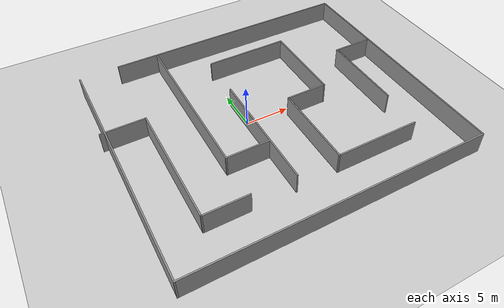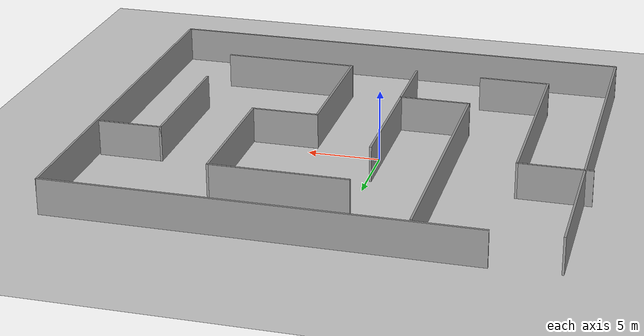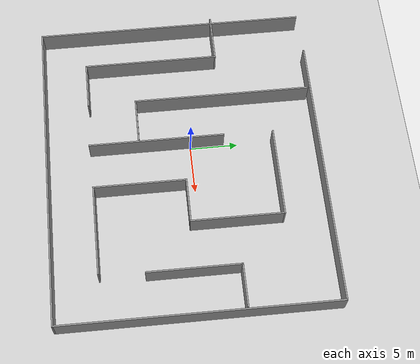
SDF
<sdf version="1.5">
 <world name="default">
  <include><uri>model://ground_plane</uri></include>
  <include><uri>model://sun</uri></include>
  <include><uri>model://maze_complex</uri></include>
 </world>
</sdf>

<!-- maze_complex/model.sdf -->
<sdf version='1.7'>
  <model name='Untitled'>
    <pose>2.07521 -0.87276 0 0 -0 0</pose>
    <link name='Wall_10'>
      <collision name='Wall_10_Collision'>
        <geometry>
          <box>
            <size>28.75 0.15 2.5</size>
          </box>
        </geometry>
        <pose>0 0 1.25 0 -0 0</pose>
      </collision>
      <visual name='Wall_10_Visual'>
        <pose>0 0 1.25 0 -0 0</pose>
        <geometry>
          <box>
            <size>28.75 0.15 2.5</size>
          </box>
        </geometry>
        <material>
          <script>
            <uri>file://media/materials/scripts/gazebo.material</uri>
            <name>Gazebo/Grey</name>
          </script>
          <ambient>1 1 1 1</ambient>
        </material>
        <meta>
          <layer>0</layer>
        </meta>
      </visual>
      <pose>16.8063 -0 0 0 -0 -1.5708</pose>
    </link>
    <link name='Wall_11'>
      <collision name='Wall_11_Collision'>
        <geometry>
          <box>
            <size>33.25 0.15 2.5</size>
          </box>
        </geometry>
        <pose>0 0 1.25 0 -0 0</pose>
      </collision>
      <visual name='Wall_11_Visual'>
        <pose>0 0 1.25 0 -0 0</pose>
        <geometry>
          <box>
            <size>33.25 0.15 2.5</size>
          </box>
        </geometry>
        <material>
          <script>
            <uri>file://media/materials/scripts/gazebo.material</uri>
            <name>Gazebo/Grey</name>
          </script>
          <ambient>1 1 1 1</ambient>
        </material>
        <meta>
          <layer>0</layer>
        </meta>
      </visual>
      <pose>0.25633 -14.3 0 0 -0 3.14159</pose>
    </link>
    <link name='Wall_12'>
      <collision name='Wall_12_Collision'>
        <geometry>
          <box>
            <size>28.5 0.15 2.5</size>
          </box>
        </geometry>
        <pose>0 0 1.25 0 -0 0</pose>
      </collision>
      <visual name='Wall_12_Visual'>
        <pose>0 0 1.25 0 -0 0</pose>
        <geometry>
          <box>
            <size>28.5 0.15 2.5</size>
          </box>
        </geometry>
        <material>
          <script>
            <uri>file://media/materials/scripts/gazebo.material</uri>
            <name>Gazebo/Grey</name>
          </script>
          <ambient>1 1 1 1</ambient>
        </material>
        <meta>
          <layer>0</layer>
        </meta>
      </visual>
      <pose>-16.2937 -0.125 0 0 -0 1.5708</pose>
    </link>
    <link name='Wall_16'>
      <collision name='Wall_16_Collision'>
        <geometry>
          <box>
            <size>9.5 0.15 2.5</size>
          </box>
        </geometry>
        <pose>0 0 1.25 0 -0 0</pose>
      </collision>
      <visual name='Wall_16_Visual'>
        <pose>0 0 1.25 0 -0 0</pose>
        <geometry>
          <box>
            <size>9.5 0.15 2.5</size>
          </box>
        </geometry>
        <material>
          <script>
            <uri>file://media/materials/scripts/gazebo.material</uri>
            <name>Gazebo/Grey</name>
          </script>
          <ambient>1 1 1 1</ambient>
        </material>
        <meta>
          <layer>0</layer>
        </meta>
      </visual>
      <pose>7.24786 -9.62641 0 0 -0 3.14159</pose>
    </link>
    <link name='Wall_17'>
      <collision name='Wall_17_Collision'>
        <geometry>
          <box>
            <size>9.75 0.15 2.5</size>
          </box>
        </geometry>
        <pose>0 0 1.25 0 -0 0</pose>
      </collision>
      <visual name='Wall_17_Visual'>
        <pose>0 0 1.25 0 -0 0</pose>
        <geometry>
          <box>
            <size>9.75 0.15 2.5</size>
          </box>
        </geometry>
        <material>
          <script>
            <uri>file://media/materials/scripts/gazebo.material</uri>
            <name>Gazebo/Grey</name>
          </script>
          <ambient>1 1 1 1</ambient>
        </material>
        <meta>
          <layer>0</layer>
        </meta>
      </visual>
      <pose>2.57286 -4.82641 0 0 -0 1.5708</pose>
    </link>
    <link name='Wall_18'>
      <collision name='Wall_18_Collision'>
        <geometry>
          <box>
            <size>4.75 0.15 2.5</size>
          </box>
        </geometry>
        <pose>0 0 1.25 0 -0 0</pose>
      </collision>
      <visual name='Wall_18_Visual'>
        <pose>0 0 1.25 0 -0 0</pose>
        <geometry>
          <box>
            <size>4.75 0.15 2.5</size>
          </box>
        </geometry>
        <material>
          <script>
            <uri>file://media/materials/scripts/gazebo.material</uri>
            <name>Gazebo/Grey</name>
          </script>
          <ambient>1 1 1 1</ambient>
        </material>
        <meta>
          <layer>0</layer>
        </meta>
      </visual>
      <pose>4.87286 -0.026406 0 0 -0 0</pose>
    </link>
    <link name='Wall_19'>
      <collision name='Wall_19_Collision'>
        <geometry>
          <box>
            <size>9.75 0.15 2.5</size>
          </box>
        </geometry>
        <pose>0 0 1.25 0 -0 0</pose>
      </collision>
      <visual name='Wall_19_Visual'>
        <pose>0 0 1.25 0 -0 0</pose>
        <geometry>
          <box>
            <size>9.75 0.15 2.5</size>
          </box>
        </geometry>
        <material>
          <script>
            <uri>file://media/materials/scripts/gazebo.material</uri>
            <name>Gazebo/Grey</name>
          </script>
          <ambient>1 1 1 1</ambient>
        </material>
        <meta>
          <layer>0</layer>
        </meta>
      </visual>
      <pose>7.17286 4.77359 0 0 -0 1.5708</pose>
    </link>
    <link name='Wall_20'>
      <collision name='Wall_20_Collision'>
        <geometry>
          <box>
            <size>9.5 0.15 2.5</size>
          </box>
        </geometry>
        <pose>0 0 1.25 0 -0 0</pose>
      </collision>
      <visual name='Wall_20_Visual'>
        <pose>0 0 1.25 0 -0 0</pose>
        <geometry>
          <box>
            <size>9.5 0.15 2.5</size>
          </box>
        </geometry>
        <material>
          <script>
            <uri>file://media/materials/scripts/gazebo.material</uri>
            <name>Gazebo/Grey</name>
          </script>
          <ambient>1 1 1 1</ambient>
        </material>
        <meta>
          <layer>0</layer>
        </meta>
      </visual>
      <pose>2.49785 9.57359 0 0 -0 3.14159</pose>
    </link>
    <link name='Wall_22'>
      <collision name='Wall_22_Collision'>
        <geometry>
          <box>
            <size>14.25 0.15 2.5</size>
          </box>
        </geometry>
        <pose>0 0 1.25 0 -0 0</pose>
      </collision>
      <visual name='Wall_22_Visual'>
        <pose>0 0 1.25 0 -0 0</pose>
        <geometry>
          <box>
            <size>14.25 0.15 2.5</size>
          </box>
        </geometry>
        <material>
          <script>
            <uri>file://media/materials/scripts/gazebo.material</uri>
            <name>Gazebo/Grey</name>
          </script>
          <ambient>1 1 1 1</ambient>
        </material>
        <meta>
          <layer>0</layer>
        </meta>
      </visual>
      <pose>-2.27908 -2.71633 0 0 -0 1.5708</pose>
    </link>
    <link name='Wall_24'>
      <collision name='Wall_24_Collision'>
        <geometry>
          <box>
            <size>5 0.15 2.5</size>
          </box>
        </geometry>
        <pose>0 0 1.25 0 -0 0</pose>
      </collision>
      <visual name='Wall_24_Visual'>
        <pose>0 0 1.25 0 -0 0</pose>
        <geometry>
          <box>
            <size>5 0.15 2.5</size>
          </box>
        </geometry>
        <material>
          <script>
            <uri>file://media/materials/scripts/gazebo.material</uri>
            <name>Gazebo/Grey</name>
          </script>
          <ambient>1 1 1 1</ambient>
        </material>
        <meta>
          <layer>0</layer>
        </meta>
      </visual>
      <pose>-9.53133 -9.62641 0 0 -0 3.14159</pose>
    </link>
    <link name='Wall_25'>
      <collision name='Wall_25_Collision'>
        <geometry>
          <box>
            <size>14.25 0.15 2.5</size>
          </box>
        </geometry>
        <pose>0 0 1.25 0 -0 0</pose>
      </collision>
      <visual name='Wall_25_Visual'>
        <pose>0 0 1.25 0 -0 0</pose>
        <geometry>
          <box>
            <size>14.25 0.15 2.5</size>
          </box>
        </geometry>
        <material>
          <script>
            <uri>file://media/materials/scripts/gazebo.material</uri>
            <name>Gazebo/Grey</name>
          </script>
          <ambient>1 1 1 1</ambient>
        </material>
        <meta>
          <layer>0</layer>
        </meta>
      </visual>
      <pose>-11.9563 -2.57641 0 0 -0 1.5708</pose>
    </link>
    <link name='Wall_26'>
      <collision name='Wall_26_Collision'>
        <geometry>
          <box>
            <size>5 0.15 2.5</size>
          </box>
        </geometry>
        <pose>0 0 1.25 0 -0 0</pose>
      </collision>
      <visual name='Wall_26_Visual'>
        <pose>0 0 1.25 0 -0 0</pose>
        <geometry>
          <box>
            <size>5 0.15 2.5</size>
          </box>
        </geometry>
        <material>
          <script>
            <uri>file://media/materials/scripts/gazebo.material</uri>
            <name>Gazebo/Grey</name>
          </script>
          <ambient>1 1 1 1</ambient>
        </material>
        <meta>
          <layer>0</layer>
        </meta>
      </visual>
      <pose>-14.3813 4.47359 0 0 -0 3.14159</pose>
    </link>
    <link name='Wall_28'>
      <collision name='Wall_28_Collision'>
        <geometry>
          <box>
            <size>9.75 0.15 2.5</size>
          </box>
        </geometry>
        <pose>0 0 1.25 0 -0 0</pose>
      </collision>
      <visual name='Wall_28_Visual'>
        <pose>0 0 1.25 0 -0 0</pose>
        <geometry>
          <box>
            <size>9.75 0.15 2.5</size>
          </box>
        </geometry>
        <material>
          <script>
            <uri>file://media/materials/scripts/gazebo.material</uri>
            <name>Gazebo/Grey</name>
          </script>
          <ambient>1 1 1 1</ambient>
        </material>
        <meta>
          <layer>0</layer>
        </meta>
      </visual>
      <pose>12.2027 -0.139069 0 0 -0 1.5708</pose>
    </link>
    <link name='Wall_29'>
      <collision name='Wall_29_Collision'>
        <geometry>
          <box>
            <size>4.5 0.15 2.5</size>
          </box>
        </geometry>
        <pose>0 0 1.25 0 -0 0</pose>
      </collision>
      <visual name='Wall_29_Visual'>
        <pose>0 0 1.25 0 -0 0</pose>
        <geometry>
          <box>
            <size>4.5 0.15 2.5</size>
          </box>
        </geometry>
        <material>
          <script>
            <uri>file://media/materials/scripts/gazebo.material</uri>
            <name>Gazebo/Grey</name>
          </script>
          <ambient>1 1 1 1</ambient>
        </material>
        <meta>
          <layer>0</layer>
        </meta>
      </visual>
      <pose>14.3777 4.66093 0 0 -0 0</pose>
    </link>
    <link name='Wall_31'>
      <collision name='Wall_31_Collision'>
        <geometry>
          <box>
            <size>5 0.15 2.5</size>
          </box>
        </geometry>
        <pose>0 0 1.25 0 -0 0</pose>
      </collision>
      <visual name='Wall_31_Visual'>
        <pose>0 0 1.25 0 -0 0</pose>
        <geometry>
          <box>
            <size>5 0.15 2.5</size>
          </box>
        </geometry>
        <material>
          <script>
            <uri>file://media/materials/scripts/gazebo.material</uri>
            <name>Gazebo/Grey</name>
          </script>
          <ambient>1 1 1 1</ambient>
        </material>
        <meta>
          <layer>0</layer>
        </meta>
      </visual>
      <pose>-4.70408 -4.58927 0 0 -0 3.14159</pose>
    </link>
    <link name='Wall_32'>
      <collision name='Wall_32_Collision'>
        <geometry>
          <box>
            <size>18.75 0.15 2.5</size>
          </box>
        </geometry>
        <pose>0 0 1.25 0 -0 0</pose>
      </collision>
      <visual name='Wall_32_Visual'>
        <pose>0 0 1.25 0 -0 0</pose>
        <geometry>
          <box>
            <size>18.75 0.15 2.5</size>
          </box>
        </geometry>
        <material>
          <script>
            <uri>file://media/materials/scripts/gazebo.material</uri>
            <name>Gazebo/Grey</name>
          </script>
          <ambient>1 1 1 1</ambient>
        </material>
        <meta>
          <layer>0</layer>
        </meta>
      </visual>
      <pose>-7.12908 4.71073 0 0 -0 1.5708</pose>
    </link>
    <link name='Wall_9'>
      <collision name='Wall_9_Collision'>
        <geometry>
          <box>
            <size>28.75 0.15 2.5</size>
          </box>
        </geometry>
        <pose>0 0 1.25 0 -0 0</pose>
      </collision>
      <visual name='Wall_9_Visual'>
        <pose>0 0 1.25 0 -0 0</pose>
        <geometry>
          <box>
            <size>28.75 0.15 2.5</size>
          </box>
        </geometry>
        <material>
          <script>
            <uri>file://media/materials/scripts/gazebo.material</uri>
            <name>Gazebo/Grey</name>
          </script>
          <ambient>1 1 1 1</ambient>
        </material>
        <meta>
          <layer>0</layer>
        </meta>
      </visual>
      <pose>2.50633 14.3 0 0 -0 0</pose>
    </link>
    <static>1</static>
  </model>
</sdf>
